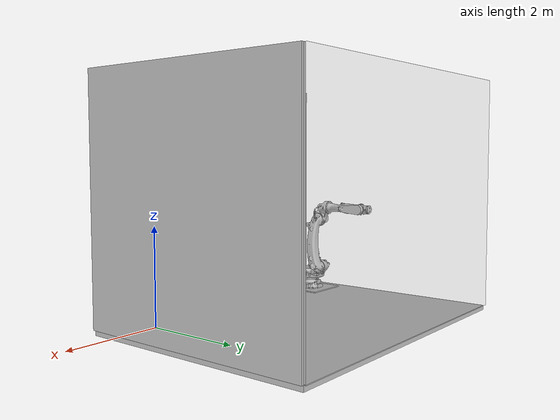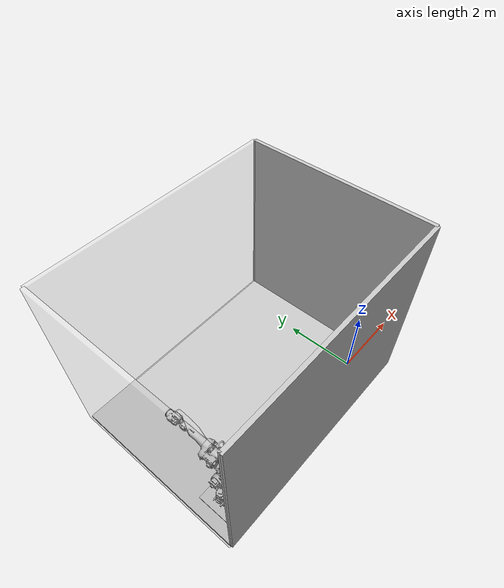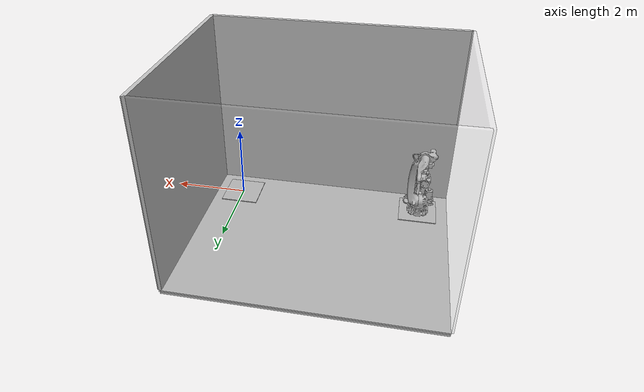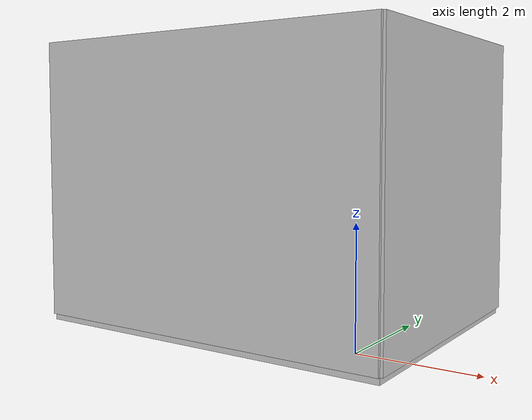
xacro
<?xml version="1.0"?>
<robot xmlns:xacro="http://wiki.ros.org/xacro" name="cx110l">

  <xacro:property name="robot_name" value="cx110l"/>
  <xacro:property name="krnx_name" value="CX110L-BC01"/>

  <!-- Import cx110l macro -->
  <xacro:include filename="$(find khi2cpp_hw_description)/${robot_name}/urdf/${robot_name}_description.urdf.xacro"/>

  <!-- create link fixed to the "world" -->
  <link name="world"/>

  <!-- Import Lab Robot Cell -->
  <xacro:include filename="$(find khi2cpp_hw)/urdf/isu_lab.xacro" />

  <xacro:cx110l_description/>

  <!-- Import cx110l ros2_control description -->
  <xacro:include filename="$(find khi2cpp_hw)/ros2_control/${robot_name}.ros2_control.xacro" />
  <xacro:cx110l_ros2_control name="${krnx_name}"/>

</robot>

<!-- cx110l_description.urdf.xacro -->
<robot xmlns:xacro="http://www.ros.org/wiki/xacro">

  <xacro:macro name="cx110l_description">

  <!-- link mass [kg] -->
  <!-- CURRENTLY ESIMATES - NEED DATA FROM KAWASAKI -->
  <xacro:property name="j0_mass" value="310"/>
  <xacro:property name="j1_mass" value="526"/>
  <xacro:property name="j2_mass" value="9"/>
  <xacro:property name="j3_mass" value="66"/>
  <xacro:property name="j4_mass" value="109"/>
  <xacro:property name="j5_mass" value="72"/>
  <xacro:property name="j6_mass" value="3"/>

  <!-- joint limits [rad] -->
  <xacro:property name="j1_lower_limit" value="${radians( 0 )}"/>
  <xacro:property name="j1_upper_limit" value="${radians( 90 )}"/>
  <xacro:property name="j2_lower_limit" value="${radians(-80 )}"/>
  <xacro:property name="j2_upper_limit" value="${radians( 36 )}"/>
  <xacro:property name="j3_lower_limit" value="${radians(-75 )}"/>
  <xacro:property name="j3_upper_limit" value="${radians( 0 )}"/>
  <xacro:property name="j4_lower_limit" value="${radians(-210)}"/>
  <xacro:property name="j4_upper_limit" value="${radians( 210)}"/>
  <xacro:property name="j5_lower_limit" value="${radians(-120)}"/>
  <xacro:property name="j5_upper_limit" value="${radians( 120)}"/>
  <xacro:property name="j6_lower_limit" value="${radians(-360)}"/>
  <xacro:property name="j6_upper_limit" value="${radians( 360)}"/>

  <!-- joint velocity limits [rad/s] -->
  <xacro:property name="j1_velocity_limit" value="${radians(130)}"/>
  <xacro:property name="j2_velocity_limit" value="${radians(125)}"/>
  <xacro:property name="j3_velocity_limit" value="${radians(125)}"/>
  <xacro:property name="j4_velocity_limit" value="${radians(180)}"/>
  <xacro:property name="j5_velocity_limit" value="${radians(180)}"/>
  <xacro:property name="j6_velocity_limit" value="${radians(280)}"/>

  <link name="base_link">
    <visual>
      <origin xyz="0 0 0" rpy="0 0 0"/>
      <geometry>
        <mesh filename="package://khi2cpp_hw/cx110l/meshes/visual/cx165l-base.dae"/>
      </geometry>
      <material
        name="">
        <color rgba="0.75294 0.75294 0.75294 1" />
      </material>
    </visual>
    <collision>
      <origin xyz="0 0 0" rpy="0 0 0"/>
      <geometry>
        <mesh filename="package://khi2cpp_hw/cx110l/meshes/collision/cx165l-base.stl"/>
      </geometry>
    </collision>
    <xacro:default_inertial mass="${j0_mass}"/>
  </link>

  <link name="link_1">
    <visual>
      <origin xyz="0 0 0" rpy="0 0 0"/>
      <geometry>
        <mesh filename="package://khi2cpp_hw/cx110l/meshes/visual/cx165l-j1.dae"/>
      </geometry>
      <material
        name="">
        <color rgba="0.75294 0.75294 0.75294 1" />
      </material>
    </visual>
    <collision>
      <origin xyz="0 0 0" rpy="0 0 0"/>
      <geometry>
        <mesh filename="package://khi2cpp_hw/cx110l/meshes/collision/cx165l-j1.stl"/>
      </geometry>
    </collision>
    <xacro:default_inertial mass="${j1_mass}"/>
  </link>

  <link name="link_2">
    <visual>
      <origin xyz="0 0 0" rpy="0 0 0"/>
      <geometry>
        <mesh filename="package://khi2cpp_hw/cx110l/meshes/visual/cx165l-j2.dae"/>
      </geometry>
      <material
        name="">
        <color rgba="0.75294 0.75294 0.75294 1" />
      </material>
    </visual>
    <collision>
      <origin xyz="0 0 0" rpy="0 0 0"/>
      <geometry>
        <mesh filename="package://khi2cpp_hw/cx110l/meshes/collision/cx165l-j2.stl"/>
      </geometry>
    </collision>
    <xacro:default_inertial mass="${j2_mass}"/>
  </link>

  <link name="link_3">
    <visual>
      <origin xyz="0 0 0" rpy="0 0 0"/>
      <geometry>
        <mesh filename="package://khi2cpp_hw/cx110l/meshes/visual/cx165l-j3.dae"/>
      </geometry>
      <material
        name="">
        <color rgba="0.75294 0.75294 0.75294 1" />
      </material>
    </visual>
    <collision>
      <origin xyz="0 0 0" rpy="0 0 0"/>
      <geometry>
        <mesh filename="package://khi2cpp_hw/cx110l/meshes/collision/cx165l-j3.stl"/>
      </geometry>
    </collision>
    <xacro:default_inertial mass="${j3_mass}"/>
  </link>

  <link name="link_4">
    <visual>
      <origin xyz="0 0 0" rpy="0 0 0"/>
      <geometry>
        <mesh filename="package://khi2cpp_hw/cx110l/meshes/visual/cx165l-j4.dae"/>
      </geometry>
      <material
        name="">
        <color rgba="0.75294 0.75294 0.75294 1" />
      </material>
    </visual>
    <collision>
      <origin xyz="0 0 0" rpy="0 0 0"/>
      <geometry>
        <mesh filename="package://khi2cpp_hw/cx110l/meshes/collision/cx165l-j4.stl"/>
      </geometry>
    </collision>
    <xacro:default_inertial mass="${j4_mass}"/>
  </link>

  <link name="link_5">
    <visual>
      <origin xyz="0 0 0" rpy="0 0 0"/>
      <geometry>
        <mesh filename="package://khi2cpp_hw/cx110l/meshes/visual/cx165l-j5.dae"/>
      </geometry>
      <material
        name="">
        <color rgba="0.75294 0.75294 0.75294 1" />
      </material>
    </visual>
    <collision>
      <origin xyz="0 0 0" rpy="0 0 0"/>
      <geometry>
        <mesh filename="package://khi2cpp_hw/cx110l/meshes/collision/cx165l-j5.stl"/>
      </geometry>
    </collision>
    <xacro:default_inertial mass="${j5_mass}"/>
  </link>

  <link name="link_6">
    <visual>
      <origin xyz="0 0 0" rpy="0 0 0"/>
      <geometry>
        <mesh filename="package://khi2cpp_hw/cx110l/meshes/visual/cx165l-j6.dae"/>
      </geometry>
      <material
        name="">
        <color rgba="0.75294 0.75294 0.75294 1" />
      </material>
    </visual>
    <collision>
      <origin xyz="0 0 0" rpy="0 0 0"/>
      <geometry>
        <mesh filename="package://khi2cpp_hw/cx110l/meshes/collision/cx165l-j6.stl"/>
      </geometry>
    </collision>
    <xacro:default_inertial mass="${j6_mass}"/>
  </link>

  <!-- base_joint fixes base_link to the environment -->
  <joint name="base_joint" type="fixed">
    <parent link="world"/>
    <child link="base_link"/>
    <origin xyz="-5.0546 0 0.0254" rpy="0 0 0"/>
    <axis xyz="0 0 -1"/>
  </joint>

  <!-- joints - main serial chain -->
  <joint name="joint_1" type="revolute">
    <parent link="base_link"/>
    <child link="link_1"/>
    <origin xyz="0 0 0.55" rpy="0 0 0"/>
    <axis xyz="0 0 -1"/>
    <limit effort="1000.0" lower="${j1_lower_limit}" upper="${j1_upper_limit}" velocity="${j1_velocity_limit}"/>
  </joint>

  <joint name="joint_2" type="revolute">
    <parent link="link_1"/>
    <child link="link_2"/>
    <origin xyz="0 0.3 0" rpy="0 0 0"/>
    <axis xyz="1 0 0"/>
    <limit effort="1000.0" lower="${j2_lower_limit}" upper="${j2_upper_limit}" velocity="${j2_velocity_limit}"/>
  </joint>

  <joint name="joint_3" type="revolute">
    <parent link="link_2"/>
    <child link="link_3"/>
    <origin xyz="0 0 1.19" rpy="0 0 0" />
    <axis xyz="1 0 0"/>
    <limit effort="1000.0" lower="${j3_lower_limit}" upper="${j3_upper_limit}" velocity="${j3_velocity_limit}"/>
  </joint>

  <joint name="joint_4" type="revolute">
    <parent link="link_3"/>
    <child link="link_4"/>
    <origin xyz="0 1.19 0.3" rpy="0 0 0" />
    <axis xyz="0 1 0"/>
    <limit effort="1000.0" lower="${j4_lower_limit}" upper="${j4_upper_limit}" velocity="${j4_velocity_limit}"/>
  </joint>

  <joint name="joint_5" type="revolute">
    <parent link="link_4"/>
    <child link="link_5"/>
    <origin xyz="0 0 0" rpy="0 0 0"/>
    <axis xyz="1 0 0"/>
    <limit effort="1000.0" lower="${j5_lower_limit}" upper="${j5_upper_limit}" velocity="${j5_velocity_limit}"/>
  </joint>

  <joint name="joint_6" type="revolute">
    <parent link="link_5"/>
    <child link="link_6"/>
    <origin xyz="0 0.235 0" rpy="0 0 0" />
    <axis xyz="0 1 0"/>
    <limit effort="1000.0" lower="${j6_lower_limit}" upper="${j6_upper_limit}" velocity="${j6_velocity_limit}"/>
  </joint>
  <link name="tool0" />
  <joint name="tool0_joint" type="fixed">
    <parent link="link_6"/>
    <child link="tool0"/>
    <origin xyz="0 0 0" rpy="0 0 0"/>
  </joint>

</xacro:macro>

</robot>

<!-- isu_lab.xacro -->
<robot xmlns:xacro="http://ros.org/wiki/xacro">

      <!-- link inertial(TODO : set correct link inertial )-->
    <xacro:macro name="default_inertial" params="mass">
      <inertial>
        <mass value="${mass}" />
        <inertia ixx="0.1" ixy="0.0" ixz="0.0" iyy="0.1" iyz="0.0" izz="0.1" />
      </inertial>
    </xacro:macro>

    <!-- Lab Environment -->
    <joint name="cx165l_baseplate" type="fixed">
        <parent link="world"/>
        <child link="base_plate_cx165l"/>
        <origin rpy="0 0 0" xyz="0 0 0"/>
    </joint>

    <link name="base_plate_cx165l">
        <parent link="world"/>
        <visual>
            <origin
                xyz="0 0 0.0127"
                rpy="0 0 0" />
            <geometry>
                <box size="1.016 1.016 0.0254" />
            </geometry>
            <material
                name="">
                <color
                rgba="0.75294 0.75294 0.75294 1" />
            </material>
        </visual>
        <collision>
            <origin
                xyz="0 0 0.0127"
                rpy="0 0 0" />
            <geometry>
                <box size="1.016 1.016 0.0254" />
            </geometry>
        </collision>
        <xacro:default_inertial mass="1"/>
    </link>

    <joint name="cx110l_baseplate" type="fixed">
        <parent link="world"/>
        <child link="base_plate_cx110l"/>
        <origin rpy="0 0 0" xyz="-5.0546 0 0"/>
    </joint>

    <link name="base_plate_cx110l">
        <parent link="world"/>
        <visual>
            <origin
                xyz="0 0 0.0127"
                rpy="0 0 0" />
            <geometry>
                <box size="1.016 1.016 0.0254" />
            </geometry>
            <material
                name="">
                <color
                rgba="0.75294 0.75294 0.75294 1" />
            </material>
        </visual>
        <collision>
            <origin
                xyz="0 0 0"
                rpy="0 0 0" />
            <geometry>
                <box size="1.016 1.016 0.0254" />
            </geometry>
        </collision>
        <xacro:default_inertial mass="1"/>
    </link>

    <joint name="world2east_wall" type="fixed">
        <parent link="world"/>
        <child link="east_wall"/>
        <origin rpy="0 0 0" xyz="0 0 0"/>
    </joint>

    <link name="east_wall">
        <visual>
            <origin
                xyz="-2.53 -0.81 2.5"
                rpy="0 0 0" />
            <geometry>
                <box size="6.68 0.1 5" />
            </geometry>
            <material
                name="">
                <color
                rgba="0.75294 0.75294 0.75294 1" />
            </material>
        </visual>
        <collision>
            <origin
                xyz="-2.53 -0.81 2.5"
                rpy="0 0 0" />
            <geometry>
                <box size="6.68 0.1 5" />
            </geometry>
        </collision>
        <xacro:default_inertial mass="1"/>
    </link>

    <joint name="world2north_wall" type="fixed">
        <parent link="world"/>
        <child link="north_wall"/>
        <origin rpy="0 0 0" xyz="0 0 0"/>
    </joint>

    <link name="north_wall">
        <visual>
            <origin
                xyz="0.810 1.717 2.5"
                rpy="0 0 0" />
            <geometry>
                <box size="0.1 5.055 5" />
            </geometry>
            <material
                name="">
                <color
                rgba="0.75294 0.75294 0.75294 1" />
            </material>
        </visual>
        <collision>
            <origin
                xyz="0.810 1.717 2.5"
                rpy="0 0 0" />
            <geometry>
                <box size="0.1 5.055 5" />
            </geometry>
        </collision>
        <xacro:default_inertial mass="1"/>
    </link>

    <joint name="world2floor" type="fixed">
        <parent link="world"/>
        <child link="floor"/>
        <origin rpy="0 0 0" xyz="0 0 0"/>
    </joint>

    <link name="floor">
        <visual>
            <origin
                xyz="-2.53 1.717 -0.063"
                rpy="0 0 0" />
            <geometry>
                <box size="6.68 5.055 0.1" />
            </geometry>
            <material
                name="">
                <color
                rgba="0.75294 0.75294 0.75294 1" />
            </material>
        </visual>
        <collision>
            <origin
                xyz="-2.53 1.717 -0.063"
                rpy="0 0 0" />
            <geometry>
                <box size="6.68 5.055 0.1" />
            </geometry>
        </collision>
        <xacro:default_inertial mass="1"/>
    </link>

    <joint name="world2westwall" type="fixed">
        <parent link="world"/>
        <child link="west_wall"/>
        <origin rpy="0 0 0" xyz="0 0 0"/>
    </joint>

    <link name="west_wall">
        <visual>
            <origin
                xyz="-2.53 4.245 2.5"
                rpy="0 0 0" />
            <geometry>
                <box size="6.68 0.1 5" />
            </geometry>
            <material
                name="">
                <color
                rgba="0.75294 0.75294 0.75294 0.1" />
            </material>
        </visual>
        <collision>
            <origin
                xyz="-2.53 4.245 2.5"
                rpy="0 0 0" />
            <geometry>
                <box size="6.68 0.1 5" />
            </geometry>
        </collision>
        <xacro:default_inertial mass="1"/>
    </link>

    <joint name="world2south_wall" type="fixed">
        <parent link="world"/>
        <child link="south_wall"/>
        <origin rpy="0 0 0" xyz="0 0 0"/>
    </joint>

    <link name="south_wall">
        <visual>
            <origin
                xyz="-5.878 1.7175 2.5"
                rpy="0 0 0" />
            <geometry>
                <box size="0.1 5.055 5" />
            </geometry>
            <material
                name="">
                <color
                rgba="0.75294 0.75294 0.75294 0.1" />
            </material>
        </visual>
        <collision>
            <origin
                xyz="-5.878 1.7175 2.5"
                rpy="0 0 0" />
            <geometry>
                <box size="0.1 5.055 5" />
            </geometry>
        </collision>
        <xacro:default_inertial mass="1"/>
    </link>

</robot>
